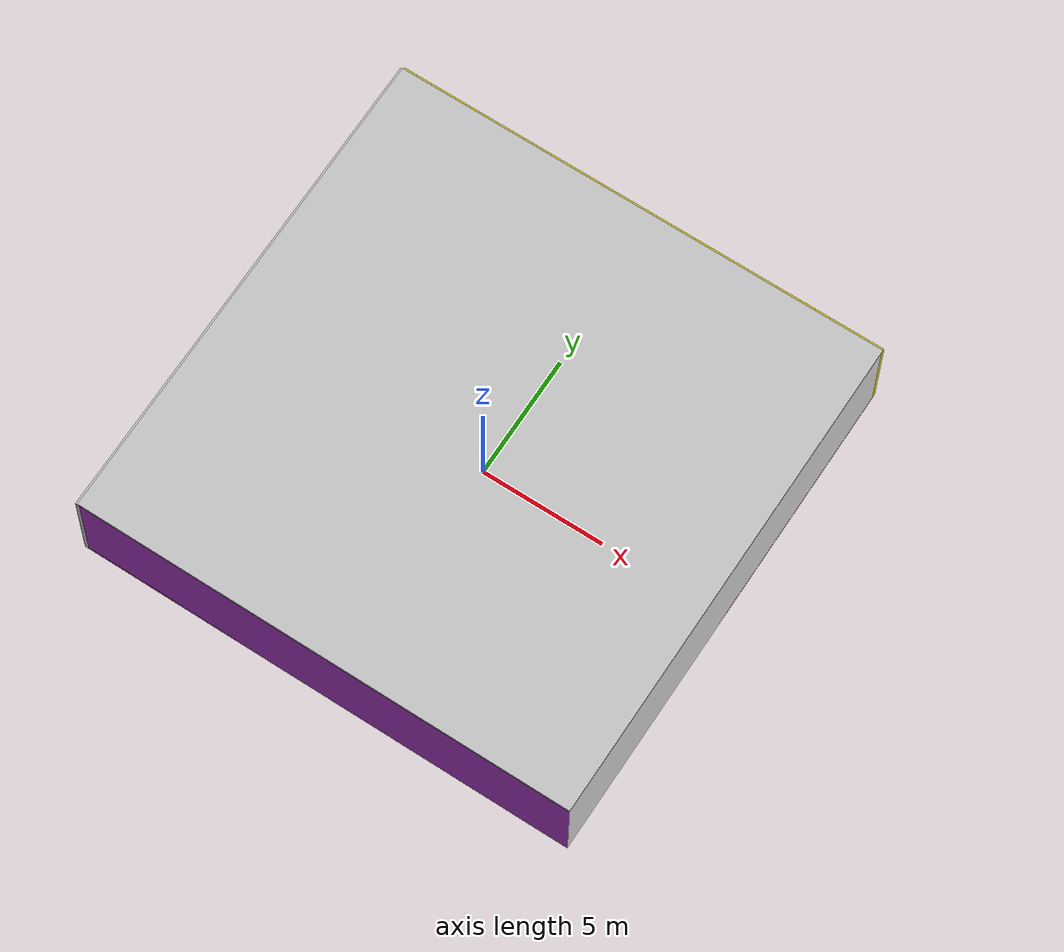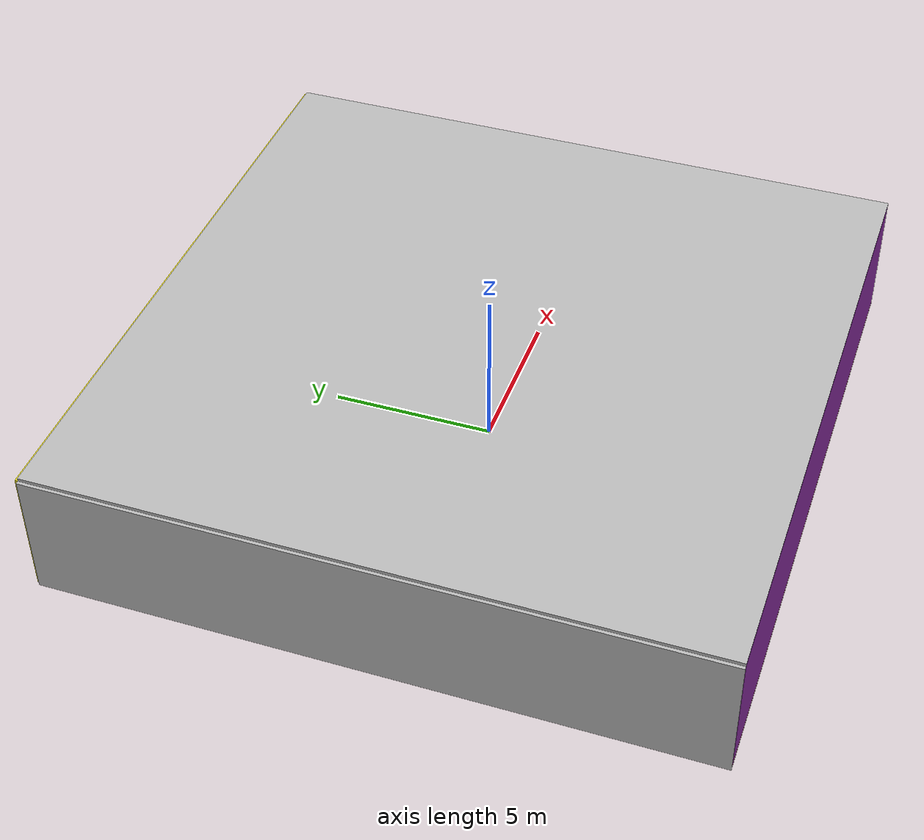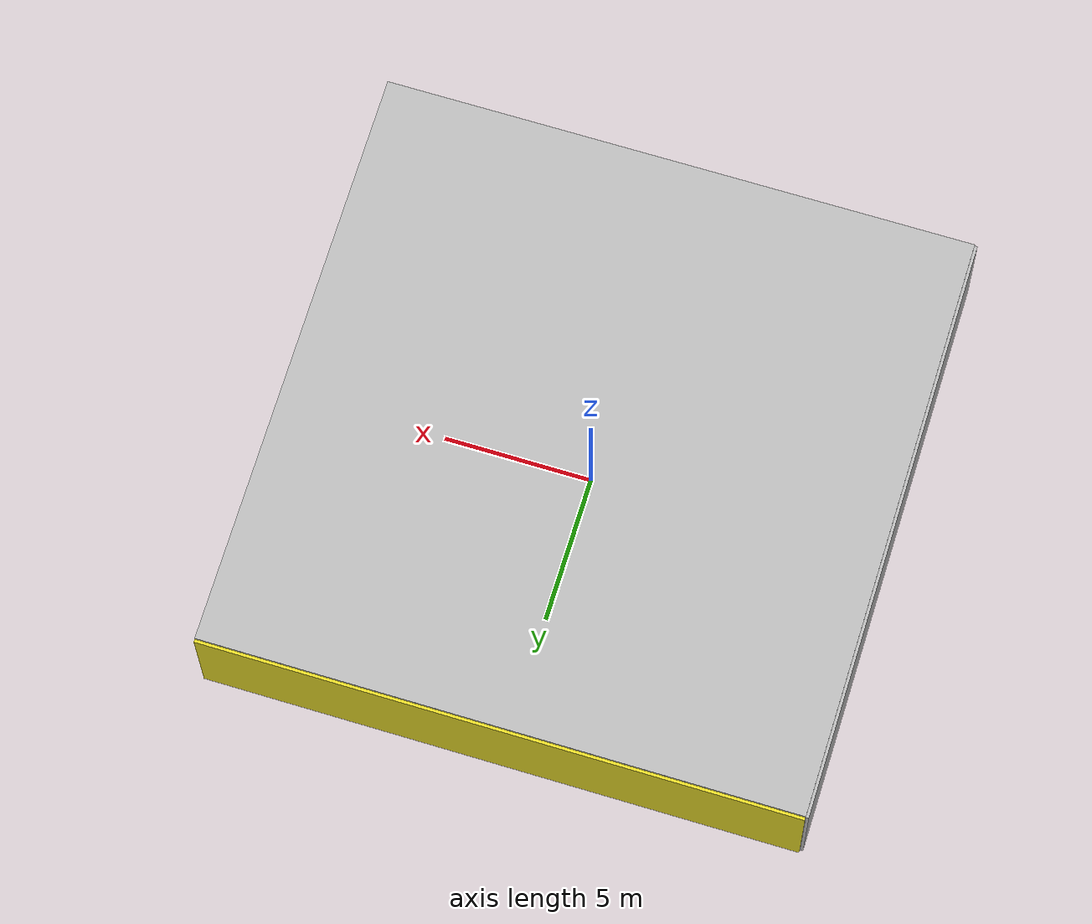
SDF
<sdf version="1.4">
 <world name="default">
  <physics type="ode">
   <max_step_size>0.001</max_step_size>
   <real_time_factor>1</real_time_factor>
   <real_time_update_rate>1000</real_time_update_rate>
   <gravity>0 0 -9.8</gravity>
  </physics>
  <scene><ambient>0.4 0.4 0.4 1</ambient><background>0.7 0.7 0.7 1</background><shadows>1</shadows></scene>
  <model name="Surrounding">
   <static>1</static>
   <link name="Ceiling">
    <collision name="Ceiling_Collision"><geometry><box><size>20 20 0.1</size></box></geometry></collision>
    <visual name="Ceiling_Visual">
     <geometry><box><size>20 20 0.1</size></box></geometry>
     <material>
      <script><uri>file://media/materials/scripts/gazebo.material</uri><name>Gazebo/JointAnchor</name></script>
     </material>
    </visual>
    <pose>0 0 4.05 0 0 0</pose>
   </link>
   <link name="Wall_South">
    <collision name="Wall_South_Collision">
     <geometry><box><size>20 0 4</size></box></geometry>
     <pose>0 0 2 0 -0 0</pose>
    </collision>
    <visual name="Wall_South_Visual">
     <pose>0 0 2 0 -0 0</pose>
     <geometry><box><size>20 0 4</size></box></geometry>
     <material>
      <script><uri>file://media/materials/scripts/gazebo.material</uri><name>Gazebo/PurpleGlow</name></script>
     </material>
    </visual>
    <velocity_decay><linear>0</linear><angular>0</angular></velocity_decay>
    <pose>0 -10 0 0 -0 0</pose>
   </link>
   <link name="Wall_East">
    <collision name="Wall_21_Collision">
     <geometry><box><size>20 0 4</size></box></geometry>
     <pose>0 0 2 0 -0 0</pose>
    </collision>
    <visual name="Wall_21_Visual">
     <pose>0 0 2 0 -0 0</pose>
     <geometry><box><size>20 0 4</size></box></geometry>
     <material>
      <script><uri>file://media/materials/scripts/gazebo.material</uri><name>Gazebo/WhiteGlow</name></script>
     </material>
    </visual>
    <velocity_decay><linear>0</linear><angular>0</angular></velocity_decay>
    <pose>10 0 0 0 -0 1.5708</pose>
   </link>
   <link name="Wall_North">
    <collision name="Wall_22_Collision">
     <geometry><box><size>20 0.2 4</size></box></geometry>
     <pose>0 0 2 0 -0 0</pose>
    </collision>
    <visual name="Wall_22_Visual">
     <pose>0 0 2 0 -0 0</pose>
     <geometry><box><size>20 0.2 4</size></box></geometry>
     <material>
      <script><uri>file://media/materials/scripts/gazebo.material</uri><name>Gazebo/Yellow</name></script>
     </material>
    </visual>
    <velocity_decay><linear>0</linear><angular>0</angular></velocity_decay>
    <pose>0 10 0 0 -0 0</pose>
   </link>
   <link name="Wall_West">
    <collision name="Wall_23_Collision">
     <geometry><box><size>20 0.2 4</size></box></geometry>
     <pose>0 0 2 0 -0 0</pose>
    </collision>
    <visual name="Wall_23_Visual">
     <pose>0 0 2 0 -0 0</pose>
     <geometry><box><size>20 0.2 4</size></box></geometry>
     <material>
      <script><uri>file://media/materials/scripts/gazebo.material</uri><name>Gazebo/LightOn</name></script>
     </material>
    </visual>
    <velocity_decay><linear>0</linear><angular>0</angular></velocity_decay>
    <pose>-10 0 0 0 0 -1.5708</pose>
   </link>
   <link name="Ground_link">
    <collision name="collision">
     <pose>0 0 .05 0 -0 0</pose>
     <geometry><box><size>20 20 0.1</size></box></geometry>
    </collision>
    <visual name="visual">
     <pose>0 0 .05 0 -0 0</pose>
     <geometry><box><size>20 20 0.1</size></box></geometry>
     <material>
      <script><uri>file://media/materials/scripts/gazebo.material</uri><name>Gazebo/RedTransparent</name></script>
     </material>
    </visual>
   </link>
   <static>1</static>
  </model>
  <spherical_coordinates>
   <surface_model>EARTH_WGS84</surface_model>
   <latitude_deg>0</latitude_deg>
   <longitude_deg>0</longitude_deg>
   <elevation>0</elevation>
   <heading_deg>0</heading_deg>
  </spherical_coordinates>
  <light name="lightball_0" type="diffuse">
   <diffuse>0.8 0.8 0.8 1</diffuse>
   <specular>0.2 0.2 0.2 1</specular>
   <attenuation>
    <range>100</range>
    <constant>0.7</constant>
    <linear>0.01</linear>
    <quadratic>0.001</quadratic>
   </attenuation>
   <direction>-0.5 0.1 -0.9</direction>
   <pose>9.17212158677 7.17649220942 2.38180733616 0 0 0</pose>
  </light>
  <light name="lightball_1" type="diffuse">
   <diffuse>0.8 0.8 0.8 1</diffuse>
   <specular>0.2 0.2 0.2 1</specular>
   <attenuation>
    <range>100</range>
    <constant>0.7</constant>
    <linear>0.01</linear>
    <quadratic>0.001</quadratic>
   </attenuation>
   <direction>-0.5 0.1 -0.9</direction>
   <pose>-8.16972028397 9.89294259289 3.68694860084 0 0 0</pose>
  </light>
  <light name="lightball_2" type="diffuse">
   <diffuse>0.8 0.8 0.8 1</diffuse>
   <specular>0.2 0.2 0.2 1</specular>
   <attenuation>
    <range>100</range>
    <constant>0.7</constant>
    <linear>0.01</linear>
    <quadratic>0.001</quadratic>
   </attenuation>
   <direction>-0.5 0.1 -0.9</direction>
   <pose>-2.94761355947 -1.3665164691 2.38664000635 0 0 0</pose>
  </light>
  <light name="lightball_3" type="diffuse">
   <diffuse>0.8 0.8 0.8 1</diffuse>
   <specular>0.2 0.2 0.2 1</specular>
   <attenuation>
    <range>100</range>
    <constant>0.7</constant>
    <linear>0.01</linear>
    <quadratic>0.001</quadratic>
   </attenuation>
   <direction>-0.5 0.1 -0.9</direction>
   <pose>-9.57424540282 -3.38474271023 3.50246046871 0 0 0</pose>
  </light>
  <light name="lightball_4" type="diffuse">
   <diffuse>0.8 0.8 0.8 1</diffuse>
   <specular>0.2 0.2 0.2 1</specular>
   <attenuation>
    <range>100</range>
    <constant>0.7</constant>
    <linear>0.01</linear>
    <quadratic>0.001</quadratic>
   </attenuation>
   <direction>-0.5 0.1 -0.9</direction>
   <pose>-0.617665900195 -9.18394481018 3.07992158728 0 0 0</pose>
  </light>
  <light name="lightball_5" type="diffuse">
   <diffuse>0.8 0.8 0.8 1</diffuse>
   <specular>0.2 0.2 0.2 1</specular>
   <attenuation>
    <range>100</range>
    <constant>0.7</constant>
    <linear>0.01</linear>
    <quadratic>0.001</quadratic>
   </attenuation>
   <direction>-0.5 0.1 -0.9</direction>
   <pose>-6.59481641668 8.88089123496 1.62160596861 0 0 0</pose>
  </light>
  <light name="lightball_6" type="diffuse">
   <diffuse>0.8 0.8 0.8 1</diffuse>
   <specular>0.2 0.2 0.2 1</specular>
   <attenuation>
    <range>100</range>
    <constant>0.7</constant>
    <linear>0.01</linear>
    <quadratic>0.001</quadratic>
   </attenuation>
   <direction>-0.5 0.1 -0.9</direction>
   <pose>3.75712638596 -9.8727678279 2.44679787273 0 0 0</pose>
  </light>
  <light name="lightball_7" type="diffuse">
   <diffuse>0.8 0.8 0.8 1</diffuse>
   <specular>0.2 0.2 0.2 1</specular>
   <attenuation>
    <range>100</range>
    <constant>0.7</constant>
    <linear>0.01</linear>
    <quadratic>0.001</quadratic>
   </attenuation>
   <direction>-0.5 0.1 -0.9</direction>
   <pose>-8.37658986919 8.26510881362 1.17337040771 0 0 0</pose>
  </light>
  <light name="lightball_8" type="diffuse">
   <diffuse>0.8 0.8 0.8 1</diffuse>
   <specular>0.2 0.2 0.2 1</specular>
   <attenuation>
    <range>100</range>
    <constant>0.7</constant>
    <linear>0.01</linear>
    <quadratic>0.001</quadratic>
   </attenuation>
   <direction>-0.5 0.1 -0.9</direction>
   <pose>9.59208045756 -4.5789770926 2.66250449248 0 0 0</pose>
  </light>
  <light name="lightball_9" type="diffuse">
   <diffuse>0.8 0.8 0.8 1</diffuse>
   <specular>0.2 0.2 0.2 1</specular>
   <attenuation>
    <range>100</range>
    <constant>0.7</constant>
    <linear>0.01</linear>
    <quadratic>0.001</quadratic>
   </attenuation>
   <direction>-0.5 0.1 -0.9</direction>
   <pose>-7.52140412187 8.21148899108 3.36737858576 0 0 0</pose>
  </light>
  <light name="lightball_10" type="diffuse">
   <diffuse>0.8 0.8 0.8 1</diffuse>
   <specular>0.2 0.2 0.2 1</specular>
   <attenuation>
    <range>100</range>
    <constant>0.7</constant>
    <linear>0.01</linear>
    <quadratic>0.001</quadratic>
   </attenuation>
   <direction>-0.5 0.1 -0.9</direction>
   <pose>4.3089083637 4.76648966846 2.64010242892 0 0 0</pose>
  </light>
  <light name="lightball_11" type="diffuse">
   <diffuse>0.8 0.8 0.8 1</diffuse>
   <specular>0.2 0.2 0.2 1</specular>
   <attenuation>
    <range>100</range>
    <constant>0.7</constant>
    <linear>0.01</linear>
    <quadratic>0.001</quadratic>
   </attenuation>
   <direction>-0.5 0.1 -0.9</direction>
   <pose>6.72264783796 -0.688255375142 1.1381325853 0 0 0</pose>
  </light>
  <light name="lightball_12" type="diffuse">
   <diffuse>0.8 0.8 0.8 1</diffuse>
   <specular>0.2 0.2 0.2 1</specular>
   <attenuation>
    <range>100</range>
    <constant>0.7</constant>
    <linear>0.01</linear>
    <quadratic>0.001</quadratic>
   </attenuation>
   <direction>-0.5 0.1 -0.9</direction>
   <pose>-5.53003967797 -7.00042044358 2.59161715713 0 0 0</pose>
  </light>
  <include><uri>model://cabinet</uri><pose>-6.89979852733 1.17828082348 0 0 0 1.14665968263</pose></include>
  <include><uri>model://cabinet</uri><pose>-6.98860039862 4.233709338 0 0 0 0.917700541121</pose></include>
  <include><uri>model://cabinet</uri><pose>-5.03418821046 3.34471570622 0 0 0 1.78634761352</pose></include>
  <include>
   <uri>model://robocup_3Dsim_goal</uri>
   <pose>-0.328718871784 1.85421533706 0 0 0 0.113496764473</pose>
  </include>
  <include><uri>model://table</uri><pose>2.07676992271 -3.62996942896 0 0 0 0.375444654666</pose></include>
  <include><uri>model://table</uri><pose>1.77128428651 5.15024063065 0 0 0 1.90677371051</pose></include>
  <include><uri>model://table</uri><pose>8.69516630498 -3.57984804374 0 0 0 0.52517376685</pose></include>
 </world>
</sdf>

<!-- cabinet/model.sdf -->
<sdf version="1.5">
  <model name="cabinet">
    <static>true</static>
    <link name="cabinet_bottom_plate">
      <inertial>
        <pose>0 0 -1 0 0 0</pose>
        <inertia>
          <ixx>2.050000</ixx>
          <ixy>0</ixy>
          <ixz>0</ixz>
          <iyy>2.050000</iyy>
          <iyz>0</iyz>
          <izz>2.050000</izz>
        </inertia>
        <mass>25.000000</mass>
      </inertial>
      <collision name="cabinet_bottom_plate_geom">
        <pose>0 0 0.010000 0 0 0</pose>
        <geometry>
          <box>
            <size>0.450000 0.450000 0.020000</size>
          </box>
        </geometry>
      </collision>
      <visual name="cabinet_bottom_plate_geom_visual">
        <pose>0 0 0.010000 0 0 0</pose>
        <geometry>
          <box>
            <size>0.450000 0.450000 0.020000</size>
          </box>
        </geometry>
        <material>
          <script>
            <uri>model://media/materials/scripts/gazebo.material</uri>
            <name>Gazebo/Wood</name>
          </script>
        </material>
      </visual>
      <collision name="cabinet_bottom_plate_geom_cabinet_back_plate">
        <pose>0.235000 0 0.510000 0 0 0</pose>
        <geometry>
          <box>
            <size>0.020000 0.450000 1.020000</size>
          </box>
        </geometry>
      </collision>
      <visual name="cabinet_bottom_plate_geom_cabinet_back_plate_visual">
        <pose>0.235000 0 0.510000 0 0 0</pose>
        <geometry>
          <box>
            <size>0.020000 0.450000 1.020000</size>
          </box>
        </geometry>
        <material>
          <script>
            <uri>model://media/materials/scripts/gazebo.material</uri>
            <name>Gazebo/Wood</name>
          </script>
        </material>
      </visual>
      <collision name="cabinet_bottom_plate_geom_cabinet_left_plate">
        <pose>0 0.235000 0.510000 0 0 0</pose>
        <geometry>
          <box>
            <size>0.450000 0.020000 1.020000</size>
          </box>
        </geometry>
      </collision>
      <visual name="cabinet_bottom_plate_geom_cabinet_left_plate_visual">
        <pose>0 0.235000 0.510000 0 0 0</pose>
        <geometry>
          <box>
            <size>0.450000 0.020000 1.020000</size>
          </box>
        </geometry>
        <material>
          <script>
            <uri>model://media/materials/scripts/gazebo.material</uri>
            <name>Gazebo/Wood</name>
          </script>
        </material>
      </visual>
      <collision name="cabinet_bottom_plate_geom_cabinet_middle_plate">
        <pose>0 0 0.510000 0 0 0</pose>
        <geometry>
          <box>
            <size>0.450000 0.450000 0.020000</size>
          </box>
        </geometry>
      </collision>
      <visual name="cabinet_bottom_plate_geom_cabinet_middle_plate_visual">
        <pose>0 0 0.510000 0 0 0</pose>
        <geometry>
          <box>
            <size>0.450000 0.450000 0.020000</size>
          </box>
        </geometry>
        <material>
          <script>
            <uri>model://media/materials/scripts/gazebo.material</uri>
            <name>Gazebo/Wood</name>
          </script>
        </material>
      </visual>
      <collision name="cabinet_bottom_plate_geom_cabinet_right_plate">
        <pose>0 -0.235000 0.510000 0 0 0</pose>
        <geometry>
          <box>
            <size>0.450000 0.020000 1.020000</size>
          </box>
        </geometry>
      </collision>
      <visual name="cabinet_bottom_plate_geom_cabinet_right_plate_visual">
        <pose>0 -0.235000 0.510000 0 0 0</pose>
        <geometry>
          <box>
            <size>0.450000 0.020000 1.020000</size>
          </box>
        </geometry>
        <material>
          <script>
            <uri>model://media/materials/scripts/gazebo.material</uri>
            <name>Gazebo/Wood</name>
          </script>
        </material>
      </visual>
      <collision name="cabinet_bottom_plate_geom_cabinet_top_plate">
        <pose>0 0 1.010000 0 0 0</pose>
        <geometry>
          <box>
            <size>0.450000 0.450000 0.020000</size>
          </box>
        </geometry>
      </collision>
      <visual name="cabinet_bottom_plate_geom_cabinet_top_plate_visual">
        <pose>0 0 1.010000 0 0 0</pose>
        <geometry>
          <box>
            <size>0.450000 0.450000 0.020000</size>
          </box>
        </geometry>
        <material>
          <script>
            <uri>model://media/materials/scripts/gazebo.material</uri>
            <name>Gazebo/Wood</name>
          </script>
        </material>
      </visual>
    </link>
  </model>
</sdf>

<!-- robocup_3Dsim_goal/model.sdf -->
<sdf version="1.5">
  <model name="robocup_3d_goal">
    <static>true</static>
    <link name="left_post">
      <pose>0 1.05 0.45 0 0 0</pose>
      <collision name="collision">
        <geometry>
          <cylinder>
            <radius>0.05</radius>
            <length>0.9</length>
          </cylinder>
        </geometry>
      </collision>
      <visual name="visual">
        <geometry>
          <cylinder>
            <radius>0.05</radius>
            <length>0.9</length>
          </cylinder>
        </geometry>
        <material>
          <script>
            <uri>file://media/materials/scripts/gazebo.material</uri>
            <name>Gazebo/ZincYellow</name>
          </script>
        </material>
      </visual>
    </link>
    <link name="left_support_horiz_lower">
      <pose>0.30 1.05 0.01 0 0 0</pose>
      <collision name="collision">
        <geometry>
          <box>
            <size>0.50 0.02 0.02</size>
          </box>
        </geometry>
      </collision>
      <visual name="visual">
        <geometry>
          <box>
            <size>0.50 0.02 0.02</size>
          </box>
        </geometry>
        <material>
          <script>
            <uri>file://media/materials/scripts/gazebo.material</uri>
            <name>Gazebo/White</name>
          </script>
        </material>
      </visual>
    </link>
    <link name="left_support_horiz_upper">
      <pose>0.30 1.05 0.79 0 0 0</pose>
      <collision name="collision">
        <geometry>
          <box>
            <size>0.50 0.02 0.02</size>
          </box>
        </geometry>
      </collision>
      <visual name="visual">
        <geometry>
          <box>
            <size>0.50 0.02 0.02</size>
          </box>
        </geometry>
        <material>
          <script>
            <uri>file://media/materials/scripts/gazebo.material</uri>
            <name>Gazebo/White</name>
          </script>
        </material>
      </visual>
    </link>
    <link name="left_support_vertical">
      <pose>0.56 1.05 0.4 0 1.5708 0</pose>
      <collision name="collision">
        <geometry>
          <box>
            <size>0.80 0.02 0.02</size>
          </box>
        </geometry>
      </collision>
      <visual name="visual">
        <geometry>
          <box>
            <size>0.80 0.02 0.02</size>
          </box>
        </geometry>
        <material>
          <script>
            <uri>file://media/materials/scripts/gazebo.material</uri>
            <name>Gazebo/White</name>
          </script>
        </material>
      </visual>
    </link>
    <link name="right_support_horiz_lower">
      <pose>0.30 -1.05 0.01 0 0 0</pose>
      <collision name="collision">
        <geometry>
          <box>
            <size>0.50 0.02 0.02</size>
          </box>
        </geometry>
      </collision>
      <visual name="visual">
        <geometry>
          <box>
            <size>0.50 0.02 0.02</size>
          </box>
        </geometry>
        <material>
          <script>
            <uri>file://media/materials/scripts/gazebo.material</uri>
            <name>Gazebo/White</name>
          </script>
        </material>
      </visual>
    </link>
    <link name="right_support_horiz_upper">
      <pose>0.30 -1.05 0.79 0 0 0</pose>
      <collision name="collision">
        <geometry>
          <box>
            <size>0.50 0.02 0.02</size>
          </box>
        </geometry>
      </collision>
      <visual name="visual">
        <geometry>
          <box>
            <size>0.50 0.02 0.02</size>
          </box>
        </geometry>
        <material>
          <script>
            <uri>file://media/materials/scripts/gazebo.material</uri>
            <name>Gazebo/White</name>
          </script>
        </material>
      </visual>
    </link>
    <link name="right_support_vertical">
      <pose>0.56 -1.05 0.4 0 1.5708 0</pose>
      <collision name="collision">
        <geometry>
          <box>
            <size>0.80 0.02 0.02</size>
          </box>
        </geometry>
      </collision>
      <visual name="visual">
        <geometry>
          <box>
            <size>0.80 0.02 0.02</size>
          </box>
        </geometry>
        <material>
          <script>
            <uri>file://media/materials/scripts/gazebo.material</uri>
            <name>Gazebo/White</name>
          </script>
        </material>
      </visual>
    </link>
    <link name="center_support_horiz_lower">
      <pose>0.56 0 0.01 0 1.5708 0</pose>
      <collision name="collision">
        <geometry>
          <box>
            <size>0.02 2.08 0.02</size>
          </box>
        </geometry>
      </collision>
      <visual name="visual">
        <geometry>
          <box>
            <size>0.02 2.08 0.02</size>
          </box>
        </geometry>
        <material>
          <script>
            <uri>file://media/materials/scripts/gazebo.material</uri>
            <name>Gazebo/White</name>
          </script>
        </material>
      </visual>
    </link>
    <link name="center_support_horiz_upper">
      <pose>0.56 0 0.79 0 1.5708 0</pose>
      <collision name="collision">
        <geometry>
          <box>
            <size>0.02 2.08 0.02</size>
          </box>
        </geometry>
      </collision>
      <visual name="visual">
        <geometry>
          <box>
            <size>0.02 2.08 0.02</size>
          </box>
        </geometry>
        <material>
          <script>
            <uri>file://media/materials/scripts/gazebo.material</uri>
            <name>Gazebo/White</name>
          </script>
        </material>
      </visual>
    </link>
    <link name="right_post">
      <pose>0 -1.05 0.45 0 0 0</pose>
      <collision name="collision">
        <geometry>
          <cylinder>
            <radius>0.05</radius>
            <length>0.9</length>
          </cylinder>
        </geometry>
      </collision>
      <visual name="visual">
        <geometry>
          <cylinder>
            <radius>0.05</radius>
            <length>0.9</length>
          </cylinder>
        </geometry>
        <material>
          <script>
            <uri>file://media/materials/scripts/gazebo.material</uri>
            <name>Gazebo/ZincYellow</name>
          </script>
        </material>
      </visual>
    </link>
    <link name="crossbar">
      <pose>0 0 0.85 1.57 1.57 0</pose>
      <collision name="collision">
        <geometry>
          <cylinder>
            <radius>0.05</radius>
            <length>2.0</length>
          </cylinder>
        </geometry>
      </collision>
      <visual name="visual">
        <geometry>
          <cylinder>
            <radius>0.05</radius>
            <length>2.0</length>
          </cylinder>
        </geometry>
        <material>
          <script>
            <uri>file://media/materials/scripts/gazebo.material</uri>
            <name>Gazebo/ZincYellow</name>
          </script>
        </material>
      </visual>
    </link>
    <link name="center_net">
      <pose>0.56 0 0.40 0 0 0</pose>
      <collision name="collision">
        <geometry>
          <box>
            <size>0.01 2.1 0.80</size>
          </box>
        </geometry>
      </collision>
      <visual name="visual">
        <geometry>
          <box>
            <size>0.01 2.1 0.80</size>
          </box>
        </geometry>
        <material>
          <script>
            <uri>model://../model_source/models/robocup09_spl_field/materials/scripts/</uri>
            <uri>model://../model_source/models/robocup09_spl_field/materials/textures/</uri>
            <name>RoboCup/Net</name>
          </script>
        </material>
      </visual>
    </link>
    <link name="left_net">
      <pose>0.30 1.05 0.40 0 0 0</pose>
      <collision name="collision">
        <geometry>
          <box>
            <size>0.50 0.01 0.76</size>
          </box>
        </geometry>
      </collision>
      <visual name="visual">
        <geometry>
          <box>
            <size>0.50 0.01 0.76</size>
          </box>
        </geometry>
        <material>
          <script>
            <uri>model://../model_source/models/robocup09_spl_field/materials/scripts/</uri>
            <uri>model://../model_source/models/robocup09_spl_field/materials/textures/</uri>
            <name>RoboCup/Net</name>
          </script>
        </material>
      </visual>
    </link>
    <link name="right_net">
      <pose>0.30 -1.05 0.40 0 0 0</pose>
      <collision name="collision">
        <geometry>
          <box>
            <size>0.50 0.01 0.76</size>
          </box>
        </geometry>
      </collision>
      <visual name="visual">
        <geometry>
          <box>
            <size>0.50 0.01 0.76</size>
          </box>
        </geometry>
        <material>
          <script>
            <uri>model://../model_source/models/robocup09_spl_field/materials/scripts/</uri>
            <uri>model://../model_source/models/robocup09_spl_field/materials/textures/</uri>
            <name>RoboCup/Net</name>
          </script>
        </material>
      </visual>
    </link>
  </model>
</sdf>

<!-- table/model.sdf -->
<sdf version="1.5">
  <model name="table">
    <static>true</static>
    <link name="link">
      <collision name="surface">
        <pose>0 0 1.0 0 0 0</pose>
        <geometry>
          <box>
            <size>1.5 0.8 0.03</size>
          </box>
        </geometry>
        <surface>
          <friction>
            <ode>
              <mu>0.6</mu>
              <mu2>0.6</mu2>
            </ode>
          </friction>
        </surface>
      </collision>
      <visual name="visual1">
        <pose>0 0 1.0 0 0 0</pose>
        <geometry>
          <box>
            <size>1.5 0.8 0.03</size>
          </box>
        </geometry>
        <material>
          <script>
            <uri>model://media/materials/scripts/gazebo.material</uri>
            <name>Gazebo/Wood</name>
          </script>
        </material>
      </visual>
      <collision name="front_left_leg">
        <pose>0.68 0.38 0.5 0 0 0</pose>
        <geometry>
          <cylinder>
            <radius>0.02</radius>
            <length>1.0</length>
          </cylinder>
        </geometry>
      </collision>
      <visual name="front_left_leg">
        <pose>0.68 0.38 0.5 0 0 0</pose>
        <geometry>
          <cylinder>
            <radius>0.02</radius>
            <length>1.0</length>
          </cylinder>
        </geometry>
        <material>
          <script>
            <uri>model://media/materials/scripts/gazebo.material</uri>
            <name>Gazebo/Grey</name>
          </script>
        </material>
      </visual>
      <collision name="front_right_leg">
        <pose>0.68 -0.38 0.5 0 0 0</pose>
        <geometry>
          <cylinder>
            <radius>0.02</radius>
            <length>1.0</length>
          </cylinder>
        </geometry>
      </collision>
      <visual name="front_right_leg">
        <pose>0.68 -0.38 0.5 0 0 0</pose>
        <geometry>
          <cylinder>
            <radius>0.02</radius>
            <length>1.0</length>
          </cylinder>
        </geometry>
        <material>
          <script>
            <uri>model://media/materials/scripts/gazebo.material</uri>
            <name>Gazebo/Grey</name>
          </script>
        </material>
      </visual>
      <collision name="back_right_leg">
        <pose>-0.68 -0.38 0.5 0 0 0</pose>
        <geometry>
          <cylinder>
            <radius>0.02</radius>
            <length>1.0</length>
          </cylinder>
        </geometry>
      </collision>
      <visual name="back_right_leg">
        <pose>-0.68 -0.38 0.5 0 0 0</pose>
        <geometry>
          <cylinder>
            <radius>0.02</radius>
            <length>1.0</length>
          </cylinder>
        </geometry>
        <material>
          <script>
            <uri>model://media/materials/scripts/gazebo.material</uri>
            <name>Gazebo/Grey</name>
          </script>
        </material>
      </visual>
      <collision name="back_left_leg">
        <pose>-0.68 0.38 0.5 0 0 0</pose>
        <geometry>
          <cylinder>
            <radius>0.02</radius>
            <length>1.0</length>
          </cylinder>
        </geometry>
      </collision>
      <visual name="back_left_leg">
        <pose>-0.68 0.38 0.5 0 0 0</pose>
        <geometry>
          <cylinder>
            <radius>0.02</radius>
            <length>1.0</length>
          </cylinder>
        </geometry>
        <material>
          <script>
            <uri>model://media/materials/scripts/gazebo.material</uri>
            <name>Gazebo/Grey</name>
          </script>
        </material>
      </visual>
    </link>
  </model>
</sdf>
